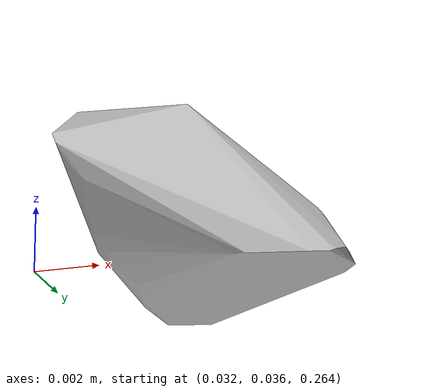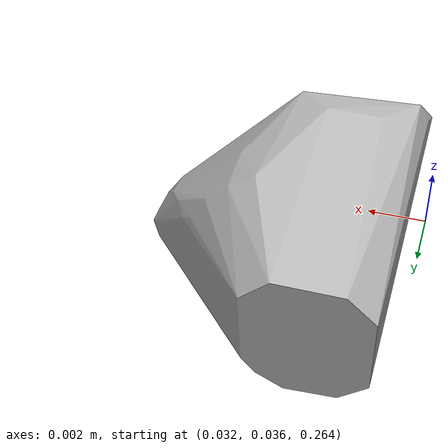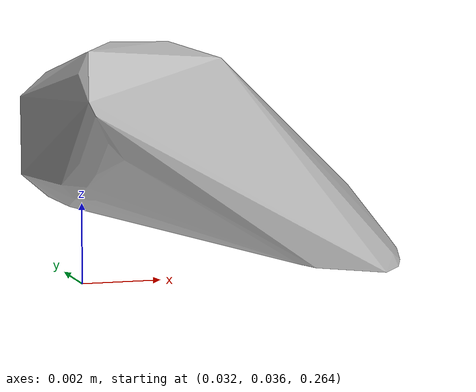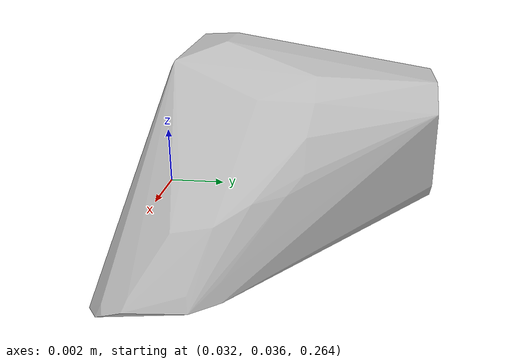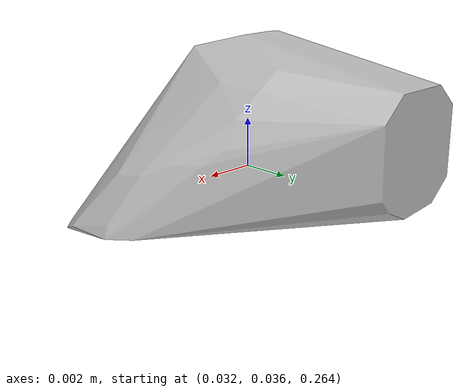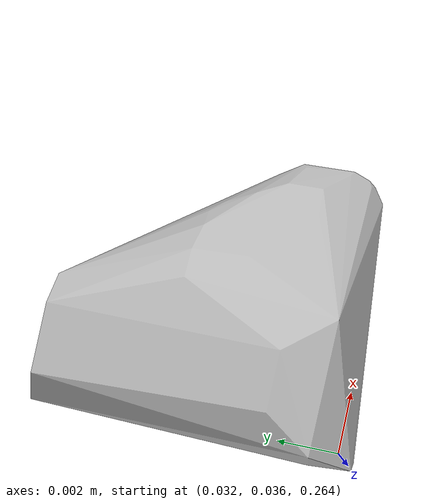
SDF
<?xml version="1.0"?>
<sdf version="1.7">
  <model name="vascular_partexport050">
    <link name="vascular_partexport050_body">
      <visual name="vascular_partexport050_visual">
        <geometry>
          <mesh>
            <uri>vascular_partexport050.obj</uri>
          </mesh>
        </geometry>
      </visual>
      <collision name="vascular_partexport050_collision">
        <geometry>
          <mesh>
            <uri>vascular_partexport050.obj</uri>
          </mesh>
        </geometry>
      </collision>
    </link>
    <frame name="vascular_partexport050_center">
      <pose relative_to="vascular_partexport050_body">0 0 0 0 0 0</pose>
    </frame>
  </model>
</sdf>
